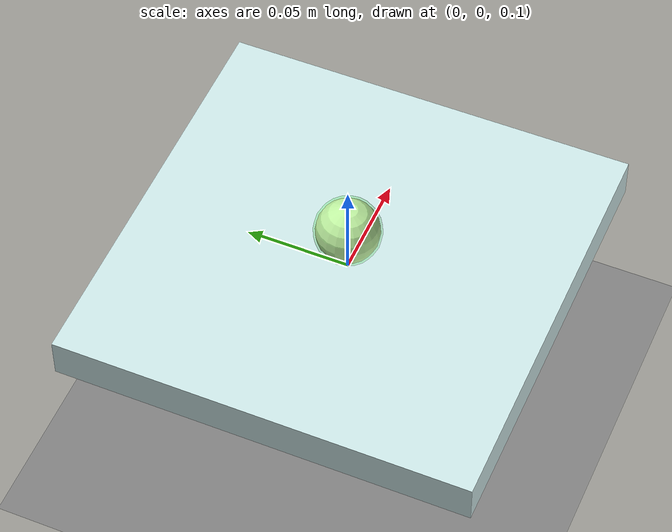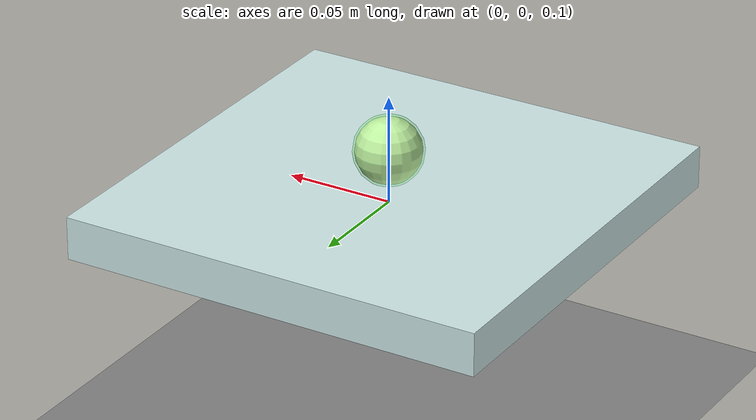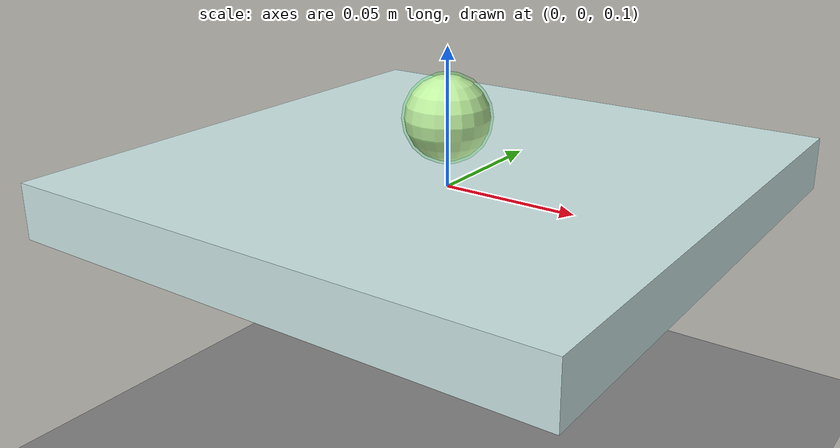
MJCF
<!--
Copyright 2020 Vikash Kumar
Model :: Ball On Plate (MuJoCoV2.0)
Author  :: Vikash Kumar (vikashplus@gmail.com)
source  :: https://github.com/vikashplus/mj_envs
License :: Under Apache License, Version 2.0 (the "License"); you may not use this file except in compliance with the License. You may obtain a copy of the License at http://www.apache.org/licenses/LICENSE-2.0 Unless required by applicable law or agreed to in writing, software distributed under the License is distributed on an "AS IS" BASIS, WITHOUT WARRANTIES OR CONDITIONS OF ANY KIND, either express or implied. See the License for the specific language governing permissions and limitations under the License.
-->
<mujoco model="Ball On Plate">
   <compiler angle='radian' meshdir='.' texturedir='.' />

    <worldbody>
        <light directional='false' diffuse='.7 .7 .7' specular='0.03 0.03 0.03' pos='-.1 -.1 1.0' dir='.1 .1 -1'/>
        <geom name='grond' type='plane' size='2 2 .1'/>

        <!-- Plate -->
        <body name='plate' pos='0 0 .1'>
            <site name='target' pos='0 0 0.025' rgba='0 1 0 .2' size='0.016'/>
            <geom type='box' size='0.1 0.1 0.01' rgba='.8 .9 .9 1'/>
            <joint name='xPlate' damping='.1' type='hinge' axis='1 0 0' limited='true' range='-.5 .5'/>
            <joint name='yPlate' damping='.1' type='hinge' axis='0 1 0' limited='true' range='-.5 .5'/>

            <!-- Plate touch site goes here-->
        </body>

        <!-- Ball -->
        <body name='ball' pos='0 0 .125'>
            <geom type='sphere' size='0.015' rgba='.95 .95 .8 1'/>
            <freejoint/>>
        </body>
    </worldbody>

    <sensor>
        <!-- Plate touch sensors goes here-->
    </sensor>

    <actuator>
        <position name='xPlane' joint='xPlate' ctrlrange='-.5 .5' ctrllimited='true'/>
        <position name='yPlane' joint='yPlate' ctrlrange='-.5 .5' ctrllimited='true'/>
    </actuator>

</mujoco>
